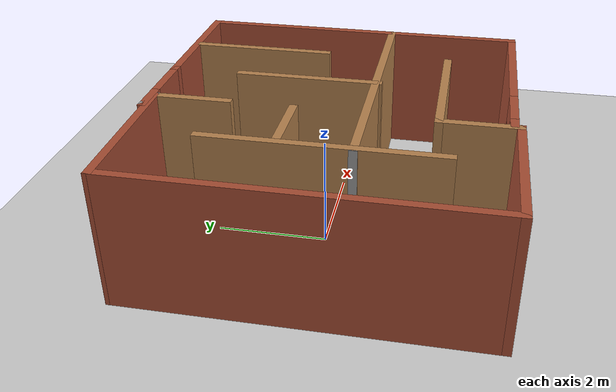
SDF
<sdf version="1.7">
 <world name="default">
  <light name="sun" type="directional">
   <pose>0 0 10 0 -0 0</pose>
   <diffuse>0.8 0.8 0.8 1</diffuse>
   <specular>0.2 0.2 0.2 1</specular>
   <attenuation>
    <range>1000</range>
    <constant>0.9</constant>
    <linear>0.01</linear>
    <quadratic>0.001</quadratic>
   </attenuation>
   <direction>-0.5 0.1 -0.9</direction>
   <spot><inner_angle>0</inner_angle><outer_angle>0</outer_angle><falloff>0</falloff></spot>
  </light>
  <model name="ground_plane">
   <static>1</static>
   <link name="link">
    <collision name="collision">
     <geometry><plane><normal>0 0 1</normal><size>100 100</size></plane></geometry>
     <surface>
      <contact><collide_bitmask>65535</collide_bitmask></contact>
      <friction><ode><mu>100</mu><mu2>50</mu2></ode></friction>
     </surface>
    </collision>
    <visual name="visual">
     <cast_shadows>0</cast_shadows>
     <geometry><plane><normal>0 0 1</normal><size>100 100</size></plane></geometry>
     <material>
      <script><uri>file://media/materials/scripts/gazebo.material</uri><name>Gazebo/Grey</name></script>
     </material>
    </visual>
   </link>
  </model>
  <gravity>0 0 -9.8</gravity>
  <magnetic_field>6e-06 2.3e-05 -4.2e-05</magnetic_field>
  <atmosphere type="adiabatic"/>
  <physics type="ode">
   <max_step_size>0.001</max_step_size>
   <real_time_factor>1</real_time_factor>
   <real_time_update_rate>1000</real_time_update_rate>
  </physics>
  <scene><ambient>0.4 0.4 0.4 1</ambient><background>0.7 0.7 0.7 1</background><shadows>1</shadows></scene>
  <audio><device>default</device></audio>
  <spherical_coordinates>
   <surface_model>EARTH_WGS84</surface_model>
   <latitude_deg>0</latitude_deg>
   <longitude_deg>0</longitude_deg>
   <elevation>0</elevation>
   <heading_deg>0</heading_deg>
  </spherical_coordinates>
  <model name="maze">
   <pose>0.909908 -0.014001 0 0 -0 0</pose>
   <link name="Wall_0">
    <collision name="Wall_0_Collision">
     <geometry><box><size>1.5 0.15 2.5</size></box></geometry>
     <pose>0 0 1.25 0 -0 0</pose>
    </collision>
    <visual name="Wall_0_Visual">
     <pose>0 0 1.25 0 -0 0</pose>
     <geometry><box><size>1.5 0.15 2.5</size></box></geometry>
     <material>
      <script><uri>file://media/materials/scripts/gazebo.material</uri><name>Gazebo/Wood</name></script>
      <ambient>1 1 1 1</ambient>
     </material>
     <meta><layer>0</layer></meta>
    </visual>
    <pose>-0.549783 2.49408 0 0 -0 -1.5708</pose>
   </link>
   <link name="Wall_10">
    <collision name="Wall_10_Collision">
     <geometry><box><size>2.75 0.15 2.5</size></box></geometry>
     <pose>0 0 1.25 0 -0 0</pose>
    </collision>
    <visual name="Wall_10_Visual">
     <pose>0 0 1.25 0 -0 0</pose>
     <geometry><box><size>2.75 0.15 2.5</size></box></geometry>
     <material>
      <script><uri>file://media/materials/scripts/gazebo.material</uri><name>Gazebo/Bricks</name></script>
      <ambient>1 1 1 1</ambient>
     </material>
     <meta><layer>0</layer></meta>
    </visual>
    <pose>-1.9557 -3.22942 0 0 -0 3.14159</pose>
   </link>
   <link name="Wall_11">
    <collision name="Wall_11_Collision">
     <geometry><box><size>6.5 0.15 2.5</size></box></geometry>
     <pose>0 0 1.25 0 -0 0</pose>
    </collision>
    <visual name="Wall_11_Visual">
     <pose>0 0 1.25 0 -0 0</pose>
     <geometry><box><size>6.5 0.15 2.5</size></box></geometry>
     <material>
      <script><uri>file://media/materials/scripts/gazebo.material</uri><name>Gazebo/Bricks</name></script>
      <ambient>1 1 1 1</ambient>
     </material>
     <meta><layer>0</layer></meta>
    </visual>
    <pose>-3.2557 -0.054424 0 0 -0 1.5708</pose>
   </link>
   <link name="Wall_12">
    <collision name="Wall_12_Collision">
     <geometry><box><size>2.85635 0.15 2.5</size></box></geometry>
     <pose>0 0 1.25 0 -0 0</pose>
    </collision>
    <visual name="Wall_12_Visual">
     <pose>0 0 1.25 0 -0 0</pose>
     <geometry><box><size>2.85635 0.15 2.5</size></box></geometry>
     <material>
      <script><uri>file://media/materials/scripts/gazebo.material</uri><name>Gazebo/Bricks</name></script>
      <ambient>1 1 1 1</ambient>
     </material>
     <meta><layer>0</layer></meta>
    </visual>
    <pose>-1.90274 3.14483 0 0 -0 0.017924</pose>
   </link>
   <link name="Wall_13">
    <collision name="Wall_13_Collision">
     <geometry><box><size>0.16 0.15 2.5</size></box></geometry>
     <pose>0 0 1.25 0 -0 0</pose>
    </collision>
    <visual name="Wall_13_Visual">
     <pose>0 0 1.25 0 -0 0</pose>
     <geometry><box><size>0.16 0.15 2.5</size></box></geometry>
     <material>
      <script><uri>file://media/materials/scripts/gazebo.material</uri><name>Gazebo/Grey</name></script>
      <ambient>1 1 1 1</ambient>
     </material>
     <meta><layer>0</layer></meta>
    </visual>
    <pose>-0.544783 3.16908 0 0 -0 0</pose>
   </link>
   <link name="Wall_15">
    <collision name="Wall_15_Collision">
     <geometry><box><size>0.16 0.15 2.5</size></box></geometry>
     <pose>0 0 1.25 0 -0 0</pose>
    </collision>
    <visual name="Wall_15_Visual">
     <pose>0 0 1.25 0 -0 0</pose>
     <geometry><box><size>0.16 0.15 2.5</size></box></geometry>
     <material>
      <script><uri>file://media/materials/scripts/gazebo.material</uri><name>Gazebo/Grey</name></script>
      <ambient>1 1 1 1</ambient>
     </material>
     <meta><layer>0</layer></meta>
    </visual>
    <pose>-1.85217 -0.632382 0 0 -0 0</pose>
   </link>
   <link name="Wall_16">
    <collision name="Wall_16_Collision">
     <geometry><box><size>5.25 0.15 2.5</size></box></geometry>
     <pose>0 0 1.25 0 -0 0</pose>
    </collision>
    <visual name="Wall_16_Visual">
     <pose>0 0 1.25 0 -0 0</pose>
     <geometry><box><size>5.25 0.15 2.5</size></box></geometry>
     <material>
      <script><uri>file://media/materials/scripts/gazebo.material</uri><name>Gazebo/Wood</name></script>
      <ambient>1 1 1 1</ambient>
     </material>
     <meta><layer>0</layer></meta>
    </visual>
    <pose>0.702835 -0.632382 0 0 -0 0</pose>
   </link>
   <link name="Wall_19">
    <collision name="Wall_19_Collision">
     <geometry><box><size>4.25 0.15 2.5</size></box></geometry>
     <pose>0 0 1.25 0 -0 0</pose>
    </collision>
    <visual name="Wall_19_Visual">
     <pose>0 0 1.25 0 -0 0</pose>
     <geometry><box><size>4.25 0.15 2.5</size></box></geometry>
     <material>
      <script><uri>file://media/materials/scripts/gazebo.material</uri><name>Gazebo/Wood</name></script>
      <ambient>1 1 1 1</ambient>
     </material>
     <meta><layer>0</layer></meta>
    </visual>
    <pose>-1.83705 -0.107845 0 0 -0 -1.5708</pose>
   </link>
   <link name="Wall_2">
    <collision name="Wall_2_Collision">
     <geometry><box><size>2.75 0.15 2.5</size></box></geometry>
     <pose>0 0 1.25 0 -0 0</pose>
    </collision>
    <visual name="Wall_2_Visual">
     <pose>0 0 1.25 0 -0 0</pose>
     <geometry><box><size>2.75 0.15 2.5</size></box></geometry>
     <material>
      <script><uri>file://media/materials/scripts/gazebo.material</uri><name>Gazebo/Bricks</name></script>
      <ambient>1 1 1 1</ambient>
     </material>
     <meta><layer>0</layer></meta>
    </visual>
    <pose>1.95703 3.22942 0 0 -0 0</pose>
   </link>
   <link name="Wall_21">
    <collision name="Wall_21_Collision">
     <geometry><box><size>1.25 0.15 2.5</size></box></geometry>
     <pose>0 0 1.25 0 -0 0</pose>
    </collision>
    <visual name="Wall_21_Visual">
     <pose>0 0 1.25 0 -0 0</pose>
     <geometry><box><size>1.25 0.15 2.5</size></box></geometry>
     <material>
      <script><uri>file://media/materials/scripts/gazebo.material</uri><name>Gazebo/Wood</name></script>
      <ambient>1 1 1 1</ambient>
     </material>
     <meta><layer>0</layer></meta>
    </visual>
    <pose>-1.13762 0.634773 0 0 -0 0</pose>
   </link>
   <link name="Wall_23">
    <collision name="Wall_23_Collision">
     <geometry><box><size>2.75 0.15 2.5</size></box></geometry>
     <pose>0 0 1.25 0 -0 0</pose>
    </collision>
    <visual name="Wall_23_Visual">
     <pose>0 0 1.25 0 -0 0</pose>
     <geometry><box><size>2.75 0.15 2.5</size></box></geometry>
     <material>
      <script><uri>file://media/materials/scripts/gazebo.material</uri><name>Gazebo/Wood</name></script>
      <ambient>1 1 1 1</ambient>
     </material>
     <meta><layer>0</layer></meta>
    </visual>
    <pose>0.677145 0.622042 0 0 -0 -1.5708</pose>
   </link>
   <link name="Wall_25">
    <collision name="Wall_25_Collision">
     <geometry><box><size>2.75 0.15 2.5</size></box></geometry>
     <pose>0 0 1.25 0 -0 0</pose>
    </collision>
    <visual name="Wall_25_Visual">
     <pose>0 0 1.25 0 -0 0</pose>
     <geometry><box><size>2.75 0.15 2.5</size></box></geometry>
     <material>
      <script><uri>file://media/materials/scripts/gazebo.material</uri><name>Gazebo/Wood</name></script>
      <ambient>1 1 1 1</ambient>
     </material>
     <meta><layer>0</layer></meta>
    </visual>
    <pose>1.9443 1.82886 0 0 -0 -1.5708</pose>
   </link>
   <link name="Wall_28">
    <pose>-0.142968 3.22942 0 0 -0 3.14159</pose>
    <visual name="Wall_28_Visual_0">
     <pose>-0.79625 0 1.25 0 -0 0</pose>
     <geometry><box><size>0.157499 0.15 2.5</size></box></geometry>
     <material>
      <script><uri>file://media/materials/scripts/gazebo.material</uri><name>Gazebo/Bricks</name></script>
      <ambient>1 1 1 1</ambient>
     </material>
     <meta><layer>0</layer></meta>
    </visual>
    <collision name="Wall_28_Collision_0">
     <geometry><box><size>0.157499 0.15 2.5</size></box></geometry>
     <pose>-0.79625 0 1.25 0 -0 0</pose>
    </collision>
    <visual name="Wall_28_Visual_1">
     <pose>0.52875 0 1.25 0 -0 0</pose>
     <geometry><box><size>0.692501 0.15 2.5</size></box></geometry>
     <material>
      <script><uri>file://media/materials/scripts/gazebo.material</uri><name>Gazebo/Bricks</name></script>
      <ambient>1 1 1 1</ambient>
     </material>
     <meta><layer>0</layer></meta>
    </visual>
    <collision name="Wall_28_Collision_1">
     <geometry><box><size>0.692501 0.15 2.5</size></box></geometry>
     <pose>0.52875 0 1.25 0 -0 0</pose>
    </collision>
    <visual name="Wall_28_Visual_2">
     <pose>-0.267501 0 2.25 0 -0 0</pose>
     <geometry><box><size>0.9 0.15 0.5</size></box></geometry>
     <material>
      <script><uri>file://media/materials/scripts/gazebo.material</uri><name>Gazebo/Bricks</name></script>
      <ambient>1 1 1 1</ambient>
     </material>
     <meta><layer>0</layer></meta>
    </visual>
    <collision name="Wall_28_Collision_2">
     <geometry><box><size>0.9 0.15 0.5</size></box></geometry>
     <pose>-0.267501 0 2.25 0 -0 0</pose>
    </collision>
   </link>
   <link name="Wall_29">
    <collision name="Wall_29_Collision">
     <geometry><box><size>0.16 0.15 2.5</size></box></geometry>
     <pose>0 0 1.25 0 -0 0</pose>
    </collision>
    <visual name="Wall_29_Visual">
     <pose>0 0 1.25 0 -0 0</pose>
     <geometry><box><size>0.16 0.15 2.5</size></box></geometry>
     <material>
      <script><uri>file://media/materials/scripts/gazebo.material</uri><name>Gazebo/Grey</name></script>
      <ambient>1 1 1 1</ambient>
     </material>
     <meta><layer>0</layer></meta>
    </visual>
    <pose>-0.937968 3.22942 0 0 -0 0</pose>
   </link>
   <link name="Wall_3">
    <collision name="Wall_3_Collision">
     <geometry><box><size>6.5 0.15 2.5</size></box></geometry>
     <pose>0 0 1.25 0 -0 0</pose>
    </collision>
    <visual name="Wall_3_Visual">
     <pose>0 0 1.25 0 -0 0</pose>
     <geometry><box><size>6.5 0.15 2.5</size></box></geometry>
     <material>
      <script><uri>file://media/materials/scripts/gazebo.material</uri><name>Gazebo/Bricks</name></script>
      <ambient>1 1 1 1</ambient>
     </material>
     <meta><layer>0</layer></meta>
    </visual>
    <pose>3.25703 0.054424 0 0 -0 -1.5708</pose>
   </link>
   <link name="Wall_4">
    <pose>1.33203 -3.12058 0 0 -0 3.14159</pose>
    <visual name="Wall_4_Visual_0">
     <pose>-0.60376 0 1.25 0 -0 0</pose>
     <geometry><box><size>2.79248 0.15 2.5</size></box></geometry>
     <material>
      <script><uri>file://media/materials/scripts/gazebo.material</uri><name>Gazebo/Bricks</name></script>
      <ambient>1 1 1 1</ambient>
     </material>
     <meta><layer>0</layer></meta>
    </visual>
    <collision name="Wall_4_Collision_0">
     <geometry><box><size>2.79248 0.15 2.5</size></box></geometry>
     <pose>-0.60376 0 1.25 0 -0 0</pose>
    </collision>
    <visual name="Wall_4_Visual_1">
     <pose>1.84624 0 1.25 0 -0 0</pose>
     <geometry><box><size>0.30752 0.15 2.5</size></box></geometry>
     <material>
      <script><uri>file://media/materials/scripts/gazebo.material</uri><name>Gazebo/Bricks</name></script>
      <ambient>1 1 1 1</ambient>
     </material>
     <meta><layer>0</layer></meta>
    </visual>
    <collision name="Wall_4_Collision_1">
     <geometry><box><size>0.30752 0.15 2.5</size></box></geometry>
     <pose>1.84624 0 1.25 0 -0 0</pose>
    </collision>
    <visual name="Wall_4_Visual_2">
     <pose>1.24248 0 2.25 0 -0 0</pose>
     <geometry><box><size>0.9 0.15 0.5</size></box></geometry>
     <material>
      <script><uri>file://media/materials/scripts/gazebo.material</uri><name>Gazebo/Bricks</name></script>
      <ambient>1 1 1 1</ambient>
     </material>
     <meta><layer>0</layer></meta>
    </visual>
    <collision name="Wall_4_Collision_2">
     <geometry><box><size>0.9 0.15 0.5</size></box></geometry>
     <pose>1.24248 0 2.25 0 -0 0</pose>
    </collision>
   </link>
   <link name="Wall_7">
    <collision name="Wall_7_Collision">
     <geometry><box><size>2.75 0.15 2.5</size></box></geometry>
     <pose>0 0 1.25 0 -0 0</pose>
    </collision>
    <visual name="Wall_7_Visual">
     <pose>0 0 1.25 0 -0 0</pose>
     <geometry><box><size>2.75 0.15 2.5</size></box></geometry>
     <material>
      <script><uri>file://media/materials/scripts/gazebo.material</uri><name>Gazebo/Wood</name></script>
      <ambient>1 1 1 1</ambient>
     </material>
     <meta><layer>0</layer></meta>
    </visual>
    <pose>0.6443 -1.87942 0 0 -0 3.14159</pose>
   </link>
   <link name="Wall_8">
    <collision name="Wall_8_Collision">
     <geometry><box><size>1.5 0.15 2.5</size></box></geometry>
     <pose>0 0 1.25 0 -0 0</pose>
    </collision>
    <visual name="Wall_8_Visual">
     <pose>0 0 1.25 0 -0 0</pose>
     <geometry><box><size>1.5 0.15 2.5</size></box></geometry>
     <material>
      <script><uri>file://media/materials/scripts/gazebo.material</uri><name>Gazebo/Wood</name></script>
      <ambient>1 1 1 1</ambient>
     </material>
     <meta><layer>0</layer></meta>
    </visual>
    <pose>-0.6557 -2.55442 0 0 -0 -1.5708</pose>
   </link>
   <static>1</static>
  </model>
  <model name="bookshelf">
   <static>1</static>
   <link name="link">
    <inertial><mass>1</mass></inertial>
    <collision name="back">
     <pose>0 0.005 0.6 0 -0 0</pose>
     <geometry><box><size>0.9 0.01 1.2</size></box></geometry>
    </collision>
    <visual name="visual1">
     <pose>0 0.005 0.6 0 -0 0</pose>
     <geometry><box><size>0.9 0.01 1.2</size></box></geometry>
     <material>
      <script><uri>file://media/materials/scripts/gazebo.material</uri><name>Gazebo/Wood</name></script>
     </material>
    </visual>
    <collision name="left_side">
     <pose>0.45 -0.195 0.6 0 -0 0</pose>
     <geometry><box><size>0.02 0.4 1.2</size></box></geometry>
    </collision>
    <visual name="visual2">
     <pose>0.45 -0.195 0.6 0 -0 0</pose>
     <geometry><box><size>0.02 0.4 1.2</size></box></geometry>
     <material>
      <script><uri>file://media/materials/scripts/gazebo.material</uri><name>Gazebo/Wood</name></script>
     </material>
    </visual>
    <collision name="right_side">
     <pose>-0.45 -0.195 0.6 0 -0 0</pose>
     <geometry><box><size>0.02 0.4 1.2</size></box></geometry>
    </collision>
    <visual name="visual3">
     <pose>-0.45 -0.195 0.6 0 -0 0</pose>
     <geometry><box><size>0.02 0.4 1.2</size></box></geometry>
     <material>
      <script><uri>file://media/materials/scripts/gazebo.material</uri><name>Gazebo/Wood</name></script>
     </material>
    </visual>
    <collision name="bottom">
     <pose>0 -0.195 0.03 0 -0 0</pose>
     <geometry><box><size>0.88 0.4 0.06</size></box></geometry>
    </collision>
    <visual name="visual4">
     <pose>0 -0.195 0.03 0 -0 0</pose>
     <geometry><box><size>0.88 0.4 0.06</size></box></geometry>
     <material>
      <script><uri>file://media/materials/scripts/gazebo.material</uri><name>Gazebo/Wood</name></script>
     </material>
    </visual>
    <collision name="top">
     <pose>0 -0.195 1.19 0 -0 0</pose>
     <geometry><box><size>0.88 0.4 0.02</size></box></geometry>
    </collision>
    <visual name="visual5">
     <pose>0 -0.195 1.19 0 -0 0</pose>
     <geometry><box><size>0.88 0.4 0.02</size></box></geometry>
     <material>
      <script><uri>file://media/materials/scripts/gazebo.material</uri><name>Gazebo/Wood</name></script>
     </material>
    </visual>
    <collision name="low_shelf">
     <pose>0 -0.195 0.43 0 -0 0</pose>
     <geometry><box><size>0.88 0.4 0.02</size></box></geometry>
    </collision>
    <visual name="visual6">
     <pose>0 -0.195 0.43 0 -0 0</pose>
     <geometry><box><size>0.88 0.4 0.02</size></box></geometry>
     <material>
      <script><uri>file://media/materials/scripts/gazebo.material</uri><name>Gazebo/Wood</name></script>
     </material>
    </visual>
    <collision name="high_shelf">
     <pose>0 -0.195 0.8 0 -0 0</pose>
     <geometry><box><size>0.88 0.4 0.02</size></box></geometry>
    </collision>
    <visual name="visual7">
     <pose>0 -0.195 0.8 0 -0 0</pose>
     <geometry><box><size>0.88 0.4 0.02</size></box></geometry>
     <material>
      <script><uri>file://media/materials/scripts/gazebo.material</uri><name>Gazebo/Wood</name></script>
     </material>
    </visual>
   </link>
   <pose>-1.95227 2.99299 0 0 -0 0</pose>
  </model>
 </world>
</sdf>
